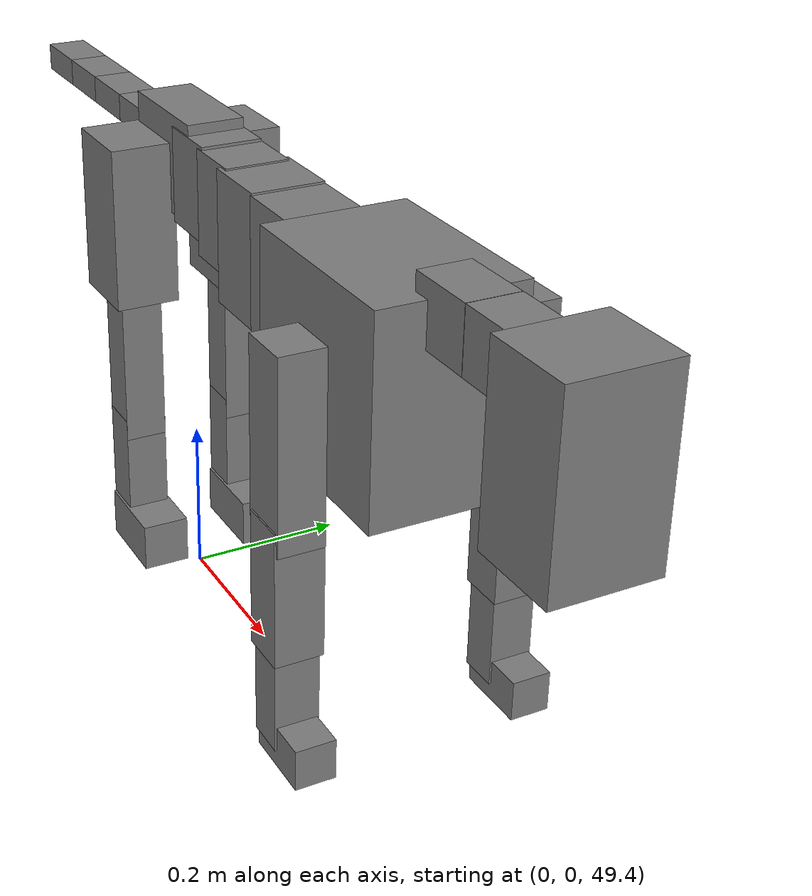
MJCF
<mujoco model="dog">

    <default>
        <joint armature="0.02" stiffness="1" damping="0.2" limited="true"/>
        <geom condim="3" friction="1 0.05 0.05" margin="0.01"/>
        <motor ctrllimited="true" ctrlrange="-1.0 1.0" forcelimited="true" gear="50"/>
    </default>

    <compiler inertiafromgeom="true" angle="radian"/>

    <option timestep="0.016" iterations="50" tolerance="1e-10" solver="Newton" jacobian="dense" cone="pyramidal"/>

    <size nconmax="20000" njmax="60000" nstack="5000000"/>
    <visual>
        <map force="0.1" zfar="30"/>
        <rgba haze="0.15 0.25 0.35 1"/>
        <quality shadowsize="2048"/>
        <global offwidth="800" offheight="800"/>
    </visual>

    <asset>
        <texture type="skybox" builtin="gradient" rgb1="0.3 0.5 0.7" rgb2="0 0 0" width="512" height="512"/>
        <texture name="texplane" type="2d" builtin="checker" rgb1=".2 .3 .4" rgb2=".1 0.15 0.2" width="512" height="512"
                 mark="cross" markrgb=".8 .8 .8"/>
        <texture name="texgeom" type="cube" builtin="flat" mark="cross" width="127" height="1278" rgb1="0.8 0.6 0.4"
                 rgb2="0.8 0.6 0.4" markrgb="1 1 1" random="0.01"/>

        <material name="matplane" reflectance="0.3" texture="texplane" texrepeat="1 1" texuniform="true"/>
        <material name="matgeom" texture="texgeom" texuniform="true" rgba="0.8 0.6 .4 1"/>
    </asset>

    <worldbody>
        <geom name="floor" pos="0 0 0" size="0 0 .25" type="plane" material="matplane" condim="3"/>

        <light directional="false" diffuse=".2 .2 .2" specular="0 0 0" pos="0 0 5" dir="0 0 -1" castshadow="false"/>
        <light mode="targetbodycom" target="torso" directional="false" diffuse=".8 .8 .8" specular="0.3 0.3 0.3"
               pos="0 0 4.0" dir="0 0 -1"/>

        <body name="root" pos="0 0 50">
            <freejoint name="root_1"/>
            <geom type="box" pos="0 0 -0.02" size="0.0774  0.0358  0.063" density="2030"/>

            <body name="spine1" pos="0.054 0 0">
                <joint name="spine1_y" axis="0 1 0" range="0 0.7" limited="true"/>
                <geom type="box" pos="0.02375 0 -0.03" size="0.04375  0.0375  0.05985" density="2030"/>

                <body name="spine2" pos="0.0612 0 0">
                    <joint name="spine2_y" axis="0 1 0" range="-0.15 0.15" limited="true"/>
                    <geom type="box" pos="0.03555  0  -0.04" size="0.04055  0.039  0.06615" density="2030"/>

                    <body name="spine3" pos="0.0730 0 0">
                        <joint name="spine3_y" axis="0 1 0" range="-0.15 0.15" limited="true"/>
                        <geom type="box" pos="0.03555  0  -0.057" size="0.04555  0.0445  0.081" density="2030"/>

                        <body name="spine4" pos="0.0780 0 0">
                            <joint name="spine4_y" axis="0 1 0" range="-0.15 0.15" limited="true"/>
                            <geom type="box" pos="0.05265  0  -0.07" size="0.05265  0.045  0.09135" density="2030"/>

                            <body name="torso" pos="0.1082 0 0">
                                <joint name="torso_y" axis="0 1 0" range="-0.15 0.15" limited="true"/>
                                <geom type="box" pos="0.11925  0  -0.085" size="0.11925  0.085  0.11745"
                                      density="2030"/>

                                <body name="neck1" pos="0.2160  0   0.0180">
                                    <joint name="neck1_y" axis="0 1 0" range="-1.2  -1" limited="true"/>
                                    <geom type="box" pos="0.0423  0  0" size="0.0423  0.03  0.036" density="2325"/>

                                    <body name="neck2" pos="0.0853  0  0">
                                        <joint name="neck2_y" axis="0 1 0" range="0.1  0" limited="true"/>
                                        <geom type="box" pos="0.0423  0  0" size="0.0423  0.03  0.036" density="2325"/>

                                        <body name="head" pos="0.0853  0  0">
                                            <joint name="head_y" axis="0 1 0" range="-0.3  -0.2" limited="true"/>
                                            <geom type="box" pos="0.0531  0  -0.055" size="0.0531  0.06  0.1044"
                                                  density="4030"/>

                                        </body>
                                    </body>
                                </body>

                                <body name="front_shoulder" pos="0.156  0   -0.0480">
                                    <joint name="front_shoulder_y" axis="0 1 0" range="-1 1.5" limited="true"/>
                                    <geom type="box" pos="0 0.13 -0.0818" size="0.0308  0.0263  0.1085" density="1158"/>
                                    <geom type="box" pos="0 -0.13 -0.0818" size="0.0308  0.0263  0.1085"
                                          density="1158"/>

                                    <body name="front_elbow" pos="0  0  -0.1636">
                                        <joint name="front_elbow_y" axis="0 1 0" range="-2 0" limited="true"/>
                                        <geom type="box" pos="0 0.13 -0.0784" size="0.0273  0.0279  0.0784"
                                              density="1081"/>
                                        <geom type="box" pos="0 -0.13 -0.0784" size="0.0273  0.0279  0.0784"
                                              density="1081"/>

                                        <body name="front_wrist" pos="0  0  -0.1568">
                                            <joint name="front_wrist_y" axis="0 1 0" range="-0.2 0" limited="true"/>
                                            <geom type="box" pos="0 0.13 -0.0469" size="0.0228  0.0253  0.0600"
                                                  density="1664"/>
                                            <geom type="box" pos="0 -0.13 -0.0469" size="0.0228  0.0253  0.0600"
                                                  density="1664"/>

                                            <body name="front_finger_end" pos="0  0  -0.0938">
                                                <joint name="front_finger_y" axis="0 1 0" range="-0.4 1"
                                                       limited="true"/>
                                                <geom type="box" pos="0.0232  0.13  -0.0089"
                                                      size="0.0425  0.0232  0.0239" density="1515"/>
                                                <geom type="box" pos="0.0232  -0.13  -0.0089"
                                                      size="0.0425  0.0232  0.0239" density="1515"/>

                                            </body>

                                        </body>
                                    </body>
                                </body>

                            </body>
                        </body>
                    </body>
                </body>
            </body>

            <body name="back_hip" pos="-0.03 0 -0.018">
                <joint name="back_hip_y" axis="0 1 0" range="-1.5 0.3" limited="true"/>
                <geom type="box" pos="0 0.07 -0.0798" size="0.0511  0.0401  0.1026" density="1154"/>
                <geom type="box" pos="0 -0.07 -0.0798" size="0.0511  0.0401  0.1026" density="1154"/>

                <body name="back_knee" pos="0  0  -0.1596">
                    <joint name="back_knee_y" axis="0 1 0" range="0 2.8" limited="true"/>
                    <geom type="box" pos="0 0.07 -0.1013" size="0.0266  0.0262  0.1168" density="1227"/>
                    <geom type="box" pos="0 -0.07 -0.1013" size="0.0266  0.0262  0.1168" density="1227"/>

                    <body name="back_ankle" pos="0  0  -0.2025">
                        <joint name="back_ankle_y" axis="0 1 0" range="-2.2 0" limited="true"/>
                        <geom type="box" pos="0 0.07 -0.0655" size="0.0264  0.0264  0.0767" density="1284"/>
                        <geom type="box" pos="0 -0.07 -0.0655" size="0.0264  0.0264  0.0767" density="1284"/>

                        <body name="back_toe_end" pos="0  0  -0.1310">
                            <joint name="back_toe_y" axis="0 1 0" range="-0.4 1" limited="true"/>
                            <geom type="box" pos="0.0296  0.07  -0.0156" size="0.0542  0.0296  0.0306" density="1515"/>
                            <geom type="box" pos="0.0296  -0.07  -0.0156" size="0.0542  0.0296  0.0306" density="1515"/>

                        </body>
                    </body>
                </body>
            </body>

            <body name="tail1" pos="-0.074 0 -0.006">
                <joint name="tail1_y" axis="0 1 0" range="-0.2 0.2" limited="true"/>
                <geom type="box" pos="-0.0536  0  0" size="0.045  0.025  0.0175" density="1587"/>

                <body name="tail2" pos="-0.09 0 0">
                    <joint name="tail2_y" axis="0 1 0" range="-0.2 0.2" limited="true"/>
                    <geom type="box" pos="-0.0536  0  0" size="0.045  0.025  0.0175" density="1587"/>

                    <body name="tail3" pos="-0.09 0 0">
                        <joint name="tail3_y" axis="0 1 0" range="-0.2 0.2" limited="true"/>
                        <geom type="box" pos="-0.0536  0  0" size="0.045  0.025  0.0175" density="1587"/>

                        <body name="tail4" pos="-0.09 0 0">
                            <joint name="tail4_y" axis="0 1 0" range="-0.2 0.2" limited="true"/>
                            <geom type="box" pos="-0.0536  0  0" size="0.045  0.025  0.0175" density="1587"/>

                        </body>
                    </body>
                </body>
            </body>
        </body>
    </worldbody>

    <actuator>
        <motor joint="spine1_y" forcerange="-150 150     "/>
        <motor joint="spine2_y" forcerange="-150 150     "/>
        <motor joint="spine3_y" forcerange="-150 150     "/>
        <motor joint="spine4_y" forcerange="-150 150     "/>
        <motor joint="torso_y" forcerange="-150 150     "/>
        <motor joint="neck1_y" forcerange="-100 100       "/>
        <motor joint="neck2_y" forcerange="-100 100       "/>
        <motor joint="head_y" forcerange="-150 150       "/>
        <motor joint="front_shoulder_y" forcerange="-161.88 113.76"/>
        <motor joint="front_elbow_y" forcerange="-151.06 151.56"/>
        <motor joint="front_wrist_y" forcerange="-110.01 92.27"/>
        <motor joint="front_finger_y" forcerange="-43.80 39.89"/>
        <motor joint="back_hip_y" forcerange="-381.97 352.35"/>
        <motor joint="back_knee_y" forcerange="-289.74 291.05"/>
        <motor joint="back_angle_y" forcerange="-137.21 185.17"/>
        <motor joint="back_toe_y" forcerange="-26.15 130.54"/>
        <motor joint="tail1_y" forcerange="-50 50     "/>
        <motor joint="tail2_y" forcerange="-50 50     "/>
        <motor joint="tail3_y" forcerange="-50 50     "/>
        <motor joint="tail4_y" forcerange="-50 50     "/>
    </actuator>
</mujoco>
